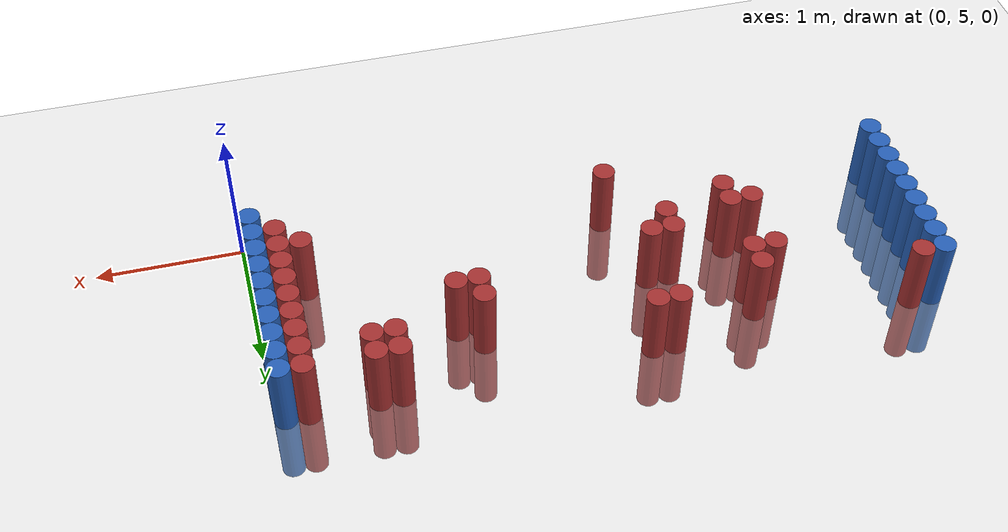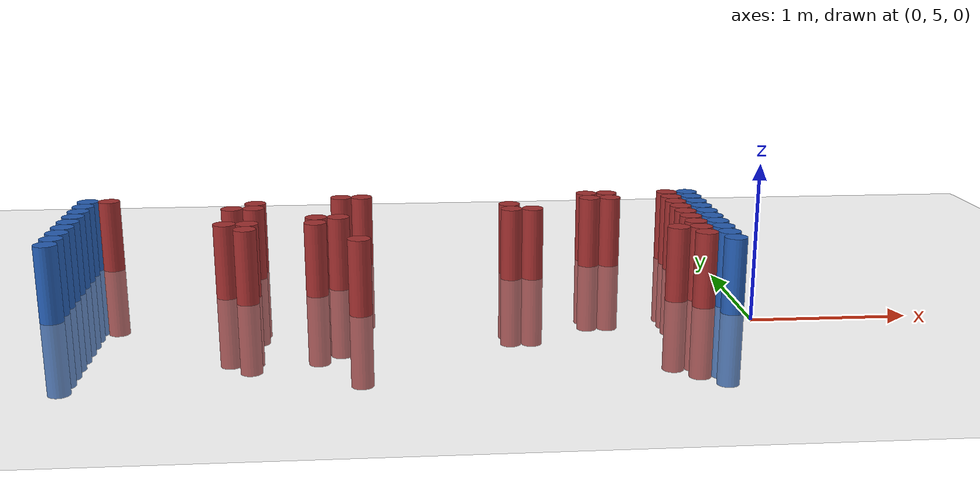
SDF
<sdf version="1.6">
 <world name="default">
  <model name="ground_plane">
   <static>1</static>
   <link name="link">
    <collision name="collision">
     <geometry><plane><normal>0 0 1</normal><size>100 100</size></plane></geometry>
     <surface><friction><ode><mu>100</mu><mu2>50</mu2></ode></friction></surface>
    </collision>
    <visual name="visual">
     <cast_shadows>0</cast_shadows>
     <geometry><plane><normal>0 0 1</normal><size>100 100</size></plane></geometry>
     <material>
      <script><uri>file://media/materials/scripts/gazebo.material</uri><name>Gazebo/Grey</name></script>
     </material>
    </visual>
   </link>
  </model>
  <model name="unit_cylinder_97">
   <static>1</static>
   <pose>-4.425000 5.325000 0.000000 0.000000 0.000000 0.000000</pose>
   <link name="link">
    <inertial>
     <mass>1</mass>
     <inertia><ixx>0.145833</ixx><ixy>0</ixy><ixz>0</ixz><iyy>0.145833</iyy><iyz>0</iyz><izz>0.125</izz></inertia>
    </inertial>
    <collision name="collision">
     <geometry><cylinder><radius>0.075000</radius><length>1</length></cylinder></geometry>
    </collision>
    <visual name="visual">
     <geometry><cylinder><radius>0.075000</radius><length>1</length></cylinder></geometry>
     <material>
      <ambient>0.152000 0.379000 0.720000 1</ambient>
      <diffuse>0.152000 0.379000 0.720000 1</diffuse>
     </material>
     <material>
      <script><name>Gazebo/Grey</name><uri>file://media/materials/scripts/gazebo.material</uri></script>
     </material>
    </visual>
   </link>
  </model>
  <model name="unit_cylinder_98">
   <static>1</static>
   <pose>-4.425000 5.475000 0.000000 0.000000 0.000000 0.000000</pose>
   <link name="link">
    <inertial>
     <mass>1</mass>
     <inertia><ixx>0.145833</ixx><ixy>0</ixy><ixz>0</ixz><iyy>0.145833</iyy><iyz>0</iyz><izz>0.125</izz></inertia>
    </inertial>
    <collision name="collision">
     <geometry><cylinder><radius>0.075000</radius><length>1</length></cylinder></geometry>
    </collision>
    <visual name="visual">
     <geometry><cylinder><radius>0.075000</radius><length>1</length></cylinder></geometry>
     <material>
      <ambient>0.152000 0.379000 0.720000 1</ambient>
      <diffuse>0.152000 0.379000 0.720000 1</diffuse>
     </material>
     <material>
      <script><name>Gazebo/Grey</name><uri>file://media/materials/scripts/gazebo.material</uri></script>
     </material>
    </visual>
   </link>
  </model>
  <model name="unit_cylinder_99">
   <static>1</static>
   <pose>-4.425000 5.625000 0.000000 0.000000 0.000000 0.000000</pose>
   <link name="link">
    <inertial>
     <mass>1</mass>
     <inertia><ixx>0.145833</ixx><ixy>0</ixy><ixz>0</ixz><iyy>0.145833</iyy><iyz>0</iyz><izz>0.125</izz></inertia>
    </inertial>
    <collision name="collision">
     <geometry><cylinder><radius>0.075000</radius><length>1</length></cylinder></geometry>
    </collision>
    <visual name="visual">
     <geometry><cylinder><radius>0.075000</radius><length>1</length></cylinder></geometry>
     <material>
      <ambient>0.152000 0.379000 0.720000 1</ambient>
      <diffuse>0.152000 0.379000 0.720000 1</diffuse>
     </material>
     <material>
      <script><name>Gazebo/Grey</name><uri>file://media/materials/scripts/gazebo.material</uri></script>
     </material>
    </visual>
   </link>
  </model>
  <model name="unit_cylinder_100">
   <static>1</static>
   <pose>-4.425000 5.775000 0.000000 0.000000 0.000000 0.000000</pose>
   <link name="link">
    <inertial>
     <mass>1</mass>
     <inertia><ixx>0.145833</ixx><ixy>0</ixy><ixz>0</ixz><iyy>0.145833</iyy><iyz>0</iyz><izz>0.125</izz></inertia>
    </inertial>
    <collision name="collision">
     <geometry><cylinder><radius>0.075000</radius><length>1</length></cylinder></geometry>
    </collision>
    <visual name="visual">
     <geometry><cylinder><radius>0.075000</radius><length>1</length></cylinder></geometry>
     <material>
      <ambient>0.152000 0.379000 0.720000 1</ambient>
      <diffuse>0.152000 0.379000 0.720000 1</diffuse>
     </material>
     <material>
      <script><name>Gazebo/Grey</name><uri>file://media/materials/scripts/gazebo.material</uri></script>
     </material>
    </visual>
   </link>
  </model>
  <model name="unit_cylinder_101">
   <static>1</static>
   <pose>-4.425000 5.925000 0.000000 0.000000 0.000000 0.000000</pose>
   <link name="link">
    <inertial>
     <mass>1</mass>
     <inertia><ixx>0.145833</ixx><ixy>0</ixy><ixz>0</ixz><iyy>0.145833</iyy><iyz>0</iyz><izz>0.125</izz></inertia>
    </inertial>
    <collision name="collision">
     <geometry><cylinder><radius>0.075000</radius><length>1</length></cylinder></geometry>
    </collision>
    <visual name="visual">
     <geometry><cylinder><radius>0.075000</radius><length>1</length></cylinder></geometry>
     <material>
      <ambient>0.152000 0.379000 0.720000 1</ambient>
      <diffuse>0.152000 0.379000 0.720000 1</diffuse>
     </material>
     <material>
      <script><name>Gazebo/Grey</name><uri>file://media/materials/scripts/gazebo.material</uri></script>
     </material>
    </visual>
   </link>
  </model>
  <model name="unit_cylinder_102">
   <static>1</static>
   <pose>-4.425000 6.075000 0.000000 0.000000 0.000000 0.000000</pose>
   <link name="link">
    <inertial>
     <mass>1</mass>
     <inertia><ixx>0.145833</ixx><ixy>0</ixy><ixz>0</ixz><iyy>0.145833</iyy><iyz>0</iyz><izz>0.125</izz></inertia>
    </inertial>
    <collision name="collision">
     <geometry><cylinder><radius>0.075000</radius><length>1</length></cylinder></geometry>
    </collision>
    <visual name="visual">
     <geometry><cylinder><radius>0.075000</radius><length>1</length></cylinder></geometry>
     <material>
      <ambient>0.152000 0.379000 0.720000 1</ambient>
      <diffuse>0.152000 0.379000 0.720000 1</diffuse>
     </material>
     <material>
      <script><name>Gazebo/Grey</name><uri>file://media/materials/scripts/gazebo.material</uri></script>
     </material>
    </visual>
   </link>
  </model>
  <model name="unit_cylinder_103">
   <static>1</static>
   <pose>-4.425000 6.225000 0.000000 0.000000 0.000000 0.000000</pose>
   <link name="link">
    <inertial>
     <mass>1</mass>
     <inertia><ixx>0.145833</ixx><ixy>0</ixy><ixz>0</ixz><iyy>0.145833</iyy><iyz>0</iyz><izz>0.125</izz></inertia>
    </inertial>
    <collision name="collision">
     <geometry><cylinder><radius>0.075000</radius><length>1</length></cylinder></geometry>
    </collision>
    <visual name="visual">
     <geometry><cylinder><radius>0.075000</radius><length>1</length></cylinder></geometry>
     <material>
      <ambient>0.152000 0.379000 0.720000 1</ambient>
      <diffuse>0.152000 0.379000 0.720000 1</diffuse>
     </material>
     <material>
      <script><name>Gazebo/Grey</name><uri>file://media/materials/scripts/gazebo.material</uri></script>
     </material>
    </visual>
   </link>
  </model>
  <model name="unit_cylinder_104">
   <static>1</static>
   <pose>-4.425000 6.375000 0.000000 0.000000 0.000000 0.000000</pose>
   <link name="link">
    <inertial>
     <mass>1</mass>
     <inertia><ixx>0.145833</ixx><ixy>0</ixy><ixz>0</ixz><iyy>0.145833</iyy><iyz>0</iyz><izz>0.125</izz></inertia>
    </inertial>
    <collision name="collision">
     <geometry><cylinder><radius>0.075000</radius><length>1</length></cylinder></geometry>
    </collision>
    <visual name="visual">
     <geometry><cylinder><radius>0.075000</radius><length>1</length></cylinder></geometry>
     <material>
      <ambient>0.152000 0.379000 0.720000 1</ambient>
      <diffuse>0.152000 0.379000 0.720000 1</diffuse>
     </material>
     <material>
      <script><name>Gazebo/Grey</name><uri>file://media/materials/scripts/gazebo.material</uri></script>
     </material>
    </visual>
   </link>
  </model>
  <model name="unit_cylinder_105">
   <static>1</static>
   <pose>-4.425000 6.525000 0.000000 0.000000 0.000000 0.000000</pose>
   <link name="link">
    <inertial>
     <mass>1</mass>
     <inertia><ixx>0.145833</ixx><ixy>0</ixy><ixz>0</ixz><iyy>0.145833</iyy><iyz>0</iyz><izz>0.125</izz></inertia>
    </inertial>
    <collision name="collision">
     <geometry><cylinder><radius>0.075000</radius><length>1</length></cylinder></geometry>
    </collision>
    <visual name="visual">
     <geometry><cylinder><radius>0.075000</radius><length>1</length></cylinder></geometry>
     <material>
      <ambient>0.152000 0.379000 0.720000 1</ambient>
      <diffuse>0.152000 0.379000 0.720000 1</diffuse>
     </material>
     <material>
      <script><name>Gazebo/Grey</name><uri>file://media/materials/scripts/gazebo.material</uri></script>
     </material>
    </visual>
   </link>
  </model>
  <model name="unit_cylinder_126">
   <static>1</static>
   <pose>-4.275000 6.525000 0.000000 0.000000 0.000000 0.000000</pose>
   <link name="link">
    <inertial>
     <mass>1</mass>
     <inertia><ixx>0.145833</ixx><ixy>0</ixy><ixz>0</ixz><iyy>0.145833</iyy><iyz>0</iyz><izz>0.125</izz></inertia>
    </inertial>
    <collision name="collision">
     <geometry><cylinder><radius>0.075000</radius><length>1</length></cylinder></geometry>
    </collision>
    <visual name="visual">
     <geometry><cylinder><radius>0.075000</radius><length>1</length></cylinder></geometry>
     <material>
      <ambient>0.648000 0.192000 0.192000 1</ambient>
      <diffuse>0.648000 0.192000 0.192000 1</diffuse>
     </material>
     <material>
      <script><name>Gazebo/Grey</name><uri>file://media/materials/scripts/gazebo.material</uri></script>
     </material>
    </visual>
   </link>
  </model>
  <model name="unit_cylinder_141">
   <static>1</static>
   <pose>-3.375000 5.775000 0.000000 0.000000 0.000000 0.000000</pose>
   <link name="link">
    <inertial>
     <mass>1</mass>
     <inertia><ixx>0.145833</ixx><ixy>0</ixy><ixz>0</ixz><iyy>0.145833</iyy><iyz>0</iyz><izz>0.125</izz></inertia>
    </inertial>
    <collision name="collision">
     <geometry><cylinder><radius>0.075000</radius><length>1</length></cylinder></geometry>
    </collision>
    <visual name="visual">
     <geometry><cylinder><radius>0.075000</radius><length>1</length></cylinder></geometry>
     <material>
      <ambient>0.648000 0.192000 0.192000 1</ambient>
      <diffuse>0.648000 0.192000 0.192000 1</diffuse>
     </material>
     <material>
      <script><name>Gazebo/Grey</name><uri>file://media/materials/scripts/gazebo.material</uri></script>
     </material>
    </visual>
   </link>
  </model>
  <model name="unit_cylinder_142">
   <static>1</static>
   <pose>-3.375000 6.225000 0.000000 0.000000 0.000000 0.000000</pose>
   <link name="link">
    <inertial>
     <mass>1</mass>
     <inertia><ixx>0.145833</ixx><ixy>0</ixy><ixz>0</ixz><iyy>0.145833</iyy><iyz>0</iyz><izz>0.125</izz></inertia>
    </inertial>
    <collision name="collision">
     <geometry><cylinder><radius>0.075000</radius><length>1</length></cylinder></geometry>
    </collision>
    <visual name="visual">
     <geometry><cylinder><radius>0.075000</radius><length>1</length></cylinder></geometry>
     <material>
      <ambient>0.648000 0.192000 0.192000 1</ambient>
      <diffuse>0.648000 0.192000 0.192000 1</diffuse>
     </material>
     <material>
      <script><name>Gazebo/Grey</name><uri>file://media/materials/scripts/gazebo.material</uri></script>
     </material>
    </visual>
   </link>
  </model>
  <model name="unit_cylinder_144">
   <static>1</static>
   <pose>-3.225000 5.625000 0.000000 0.000000 0.000000 0.000000</pose>
   <link name="link">
    <inertial>
     <mass>1</mass>
     <inertia><ixx>0.145833</ixx><ixy>0</ixy><ixz>0</ixz><iyy>0.145833</iyy><iyz>0</iyz><izz>0.125</izz></inertia>
    </inertial>
    <collision name="collision">
     <geometry><cylinder><radius>0.075000</radius><length>1</length></cylinder></geometry>
    </collision>
    <visual name="visual">
     <geometry><cylinder><radius>0.075000</radius><length>1</length></cylinder></geometry>
     <material>
      <ambient>0.648000 0.192000 0.192000 1</ambient>
      <diffuse>0.648000 0.192000 0.192000 1</diffuse>
     </material>
     <material>
      <script><name>Gazebo/Grey</name><uri>file://media/materials/scripts/gazebo.material</uri></script>
     </material>
    </visual>
   </link>
  </model>
  <model name="unit_cylinder_145">
   <static>1</static>
   <pose>-3.225000 5.775000 0.000000 0.000000 0.000000 0.000000</pose>
   <link name="link">
    <inertial>
     <mass>1</mass>
     <inertia><ixx>0.145833</ixx><ixy>0</ixy><ixz>0</ixz><iyy>0.145833</iyy><iyz>0</iyz><izz>0.125</izz></inertia>
    </inertial>
    <collision name="collision">
     <geometry><cylinder><radius>0.075000</radius><length>1</length></cylinder></geometry>
    </collision>
    <visual name="visual">
     <geometry><cylinder><radius>0.075000</radius><length>1</length></cylinder></geometry>
     <material>
      <ambient>0.648000 0.192000 0.192000 1</ambient>
      <diffuse>0.648000 0.192000 0.192000 1</diffuse>
     </material>
     <material>
      <script><name>Gazebo/Grey</name><uri>file://media/materials/scripts/gazebo.material</uri></script>
     </material>
    </visual>
   </link>
  </model>
  <model name="unit_cylinder_146">
   <static>1</static>
   <pose>-3.225000 6.225000 0.000000 0.000000 0.000000 0.000000</pose>
   <link name="link">
    <inertial>
     <mass>1</mass>
     <inertia><ixx>0.145833</ixx><ixy>0</ixy><ixz>0</ixz><iyy>0.145833</iyy><iyz>0</iyz><izz>0.125</izz></inertia>
    </inertial>
    <collision name="collision">
     <geometry><cylinder><radius>0.075000</radius><length>1</length></cylinder></geometry>
    </collision>
    <visual name="visual">
     <geometry><cylinder><radius>0.075000</radius><length>1</length></cylinder></geometry>
     <material>
      <ambient>0.648000 0.192000 0.192000 1</ambient>
      <diffuse>0.648000 0.192000 0.192000 1</diffuse>
     </material>
     <material>
      <script><name>Gazebo/Grey</name><uri>file://media/materials/scripts/gazebo.material</uri></script>
     </material>
    </visual>
   </link>
  </model>
  <model name="unit_cylinder_147">
   <static>1</static>
   <pose>-3.225000 6.375000 0.000000 0.000000 0.000000 0.000000</pose>
   <link name="link">
    <inertial>
     <mass>1</mass>
     <inertia><ixx>0.145833</ixx><ixy>0</ixy><ixz>0</ixz><iyy>0.145833</iyy><iyz>0</iyz><izz>0.125</izz></inertia>
    </inertial>
    <collision name="collision">
     <geometry><cylinder><radius>0.075000</radius><length>1</length></cylinder></geometry>
    </collision>
    <visual name="visual">
     <geometry><cylinder><radius>0.075000</radius><length>1</length></cylinder></geometry>
     <material>
      <ambient>0.648000 0.192000 0.192000 1</ambient>
      <diffuse>0.648000 0.192000 0.192000 1</diffuse>
     </material>
     <material>
      <script><name>Gazebo/Grey</name><uri>file://media/materials/scripts/gazebo.material</uri></script>
     </material>
    </visual>
   </link>
  </model>
  <model name="unit_cylinder_152">
   <static>1</static>
   <pose>-2.775000 5.775000 0.000000 0.000000 0.000000 0.000000</pose>
   <link name="link">
    <inertial>
     <mass>1</mass>
     <inertia><ixx>0.145833</ixx><ixy>0</ixy><ixz>0</ixz><iyy>0.145833</iyy><iyz>0</iyz><izz>0.125</izz></inertia>
    </inertial>
    <collision name="collision">
     <geometry><cylinder><radius>0.075000</radius><length>1</length></cylinder></geometry>
    </collision>
    <visual name="visual">
     <geometry><cylinder><radius>0.075000</radius><length>1</length></cylinder></geometry>
     <material>
      <ambient>0.648000 0.192000 0.192000 1</ambient>
      <diffuse>0.648000 0.192000 0.192000 1</diffuse>
     </material>
     <material>
      <script><name>Gazebo/Grey</name><uri>file://media/materials/scripts/gazebo.material</uri></script>
     </material>
    </visual>
   </link>
  </model>
  <model name="unit_cylinder_153">
   <static>1</static>
   <pose>-2.775000 5.925000 0.000000 0.000000 0.000000 0.000000</pose>
   <link name="link">
    <inertial>
     <mass>1</mass>
     <inertia><ixx>0.145833</ixx><ixy>0</ixy><ixz>0</ixz><iyy>0.145833</iyy><iyz>0</iyz><izz>0.125</izz></inertia>
    </inertial>
    <collision name="collision">
     <geometry><cylinder><radius>0.075000</radius><length>1</length></cylinder></geometry>
    </collision>
    <visual name="visual">
     <geometry><cylinder><radius>0.075000</radius><length>1</length></cylinder></geometry>
     <material>
      <ambient>0.648000 0.192000 0.192000 1</ambient>
      <diffuse>0.648000 0.192000 0.192000 1</diffuse>
     </material>
     <material>
      <script><name>Gazebo/Grey</name><uri>file://media/materials/scripts/gazebo.material</uri></script>
     </material>
    </visual>
   </link>
  </model>
  <model name="unit_cylinder_154">
   <static>1</static>
   <pose>-2.625000 5.925000 0.000000 0.000000 0.000000 0.000000</pose>
   <link name="link">
    <inertial>
     <mass>1</mass>
     <inertia><ixx>0.145833</ixx><ixy>0</ixy><ixz>0</ixz><iyy>0.145833</iyy><iyz>0</iyz><izz>0.125</izz></inertia>
    </inertial>
    <collision name="collision">
     <geometry><cylinder><radius>0.075000</radius><length>1</length></cylinder></geometry>
    </collision>
    <visual name="visual">
     <geometry><cylinder><radius>0.075000</radius><length>1</length></cylinder></geometry>
     <material>
      <ambient>0.648000 0.192000 0.192000 1</ambient>
      <diffuse>0.648000 0.192000 0.192000 1</diffuse>
     </material>
     <material>
      <script><name>Gazebo/Grey</name><uri>file://media/materials/scripts/gazebo.material</uri></script>
     </material>
    </visual>
   </link>
  </model>
  <model name="unit_cylinder_155">
   <static>1</static>
   <pose>-2.625000 6.525000 0.000000 0.000000 0.000000 0.000000</pose>
   <link name="link">
    <inertial>
     <mass>1</mass>
     <inertia><ixx>0.145833</ixx><ixy>0</ixy><ixz>0</ixz><iyy>0.145833</iyy><iyz>0</iyz><izz>0.125</izz></inertia>
    </inertial>
    <collision name="collision">
     <geometry><cylinder><radius>0.075000</radius><length>1</length></cylinder></geometry>
    </collision>
    <visual name="visual">
     <geometry><cylinder><radius>0.075000</radius><length>1</length></cylinder></geometry>
     <material>
      <ambient>0.648000 0.192000 0.192000 1</ambient>
      <diffuse>0.648000 0.192000 0.192000 1</diffuse>
     </material>
     <material>
      <script><name>Gazebo/Grey</name><uri>file://media/materials/scripts/gazebo.material</uri></script>
     </material>
    </visual>
   </link>
  </model>
  <model name="unit_cylinder_159">
   <static>1</static>
   <pose>-2.475000 5.325000 0.000000 0.000000 0.000000 0.000000</pose>
   <link name="link">
    <inertial>
     <mass>1</mass>
     <inertia><ixx>0.145833</ixx><ixy>0</ixy><ixz>0</ixz><iyy>0.145833</iyy><iyz>0</iyz><izz>0.125</izz></inertia>
    </inertial>
    <collision name="collision">
     <geometry><cylinder><radius>0.075000</radius><length>1</length></cylinder></geometry>
    </collision>
    <visual name="visual">
     <geometry><cylinder><radius>0.075000</radius><length>1</length></cylinder></geometry>
     <material>
      <ambient>0.648000 0.192000 0.192000 1</ambient>
      <diffuse>0.648000 0.192000 0.192000 1</diffuse>
     </material>
     <material>
      <script><name>Gazebo/Grey</name><uri>file://media/materials/scripts/gazebo.material</uri></script>
     </material>
    </visual>
   </link>
  </model>
  <model name="unit_cylinder_160">
   <static>1</static>
   <pose>-2.475000 6.525000 0.000000 0.000000 0.000000 0.000000</pose>
   <link name="link">
    <inertial>
     <mass>1</mass>
     <inertia><ixx>0.145833</ixx><ixy>0</ixy><ixz>0</ixz><iyy>0.145833</iyy><iyz>0</iyz><izz>0.125</izz></inertia>
    </inertial>
    <collision name="collision">
     <geometry><cylinder><radius>0.075000</radius><length>1</length></cylinder></geometry>
    </collision>
    <visual name="visual">
     <geometry><cylinder><radius>0.075000</radius><length>1</length></cylinder></geometry>
     <material>
      <ambient>0.648000 0.192000 0.192000 1</ambient>
      <diffuse>0.648000 0.192000 0.192000 1</diffuse>
     </material>
     <material>
      <script><name>Gazebo/Grey</name><uri>file://media/materials/scripts/gazebo.material</uri></script>
     </material>
    </visual>
   </link>
  </model>
  <model name="unit_cylinder_167">
   <static>1</static>
   <pose>-1.425000 6.075000 0.000000 0.000000 0.000000 0.000000</pose>
   <link name="link">
    <inertial>
     <mass>1</mass>
     <inertia><ixx>0.145833</ixx><ixy>0</ixy><ixz>0</ixz><iyy>0.145833</iyy><iyz>0</iyz><izz>0.125</izz></inertia>
    </inertial>
    <collision name="collision">
     <geometry><cylinder><radius>0.075000</radius><length>1</length></cylinder></geometry>
    </collision>
    <visual name="visual">
     <geometry><cylinder><radius>0.075000</radius><length>1</length></cylinder></geometry>
     <material>
      <ambient>0.648000 0.192000 0.192000 1</ambient>
      <diffuse>0.648000 0.192000 0.192000 1</diffuse>
     </material>
     <material>
      <script><name>Gazebo/Grey</name><uri>file://media/materials/scripts/gazebo.material</uri></script>
     </material>
    </visual>
   </link>
  </model>
  <model name="unit_cylinder_168">
   <static>1</static>
   <pose>-1.425000 6.225000 0.000000 0.000000 0.000000 0.000000</pose>
   <link name="link">
    <inertial>
     <mass>1</mass>
     <inertia><ixx>0.145833</ixx><ixy>0</ixy><ixz>0</ixz><iyy>0.145833</iyy><iyz>0</iyz><izz>0.125</izz></inertia>
    </inertial>
    <collision name="collision">
     <geometry><cylinder><radius>0.075000</radius><length>1</length></cylinder></geometry>
    </collision>
    <visual name="visual">
     <geometry><cylinder><radius>0.075000</radius><length>1</length></cylinder></geometry>
     <material>
      <ambient>0.648000 0.192000 0.192000 1</ambient>
      <diffuse>0.648000 0.192000 0.192000 1</diffuse>
     </material>
     <material>
      <script><name>Gazebo/Grey</name><uri>file://media/materials/scripts/gazebo.material</uri></script>
     </material>
    </visual>
   </link>
  </model>
  <model name="unit_cylinder_169">
   <static>1</static>
   <pose>-1.275000 6.075000 0.000000 0.000000 0.000000 0.000000</pose>
   <link name="link">
    <inertial>
     <mass>1</mass>
     <inertia><ixx>0.145833</ixx><ixy>0</ixy><ixz>0</ixz><iyy>0.145833</iyy><iyz>0</iyz><izz>0.125</izz></inertia>
    </inertial>
    <collision name="collision">
     <geometry><cylinder><radius>0.075000</radius><length>1</length></cylinder></geometry>
    </collision>
    <visual name="visual">
     <geometry><cylinder><radius>0.075000</radius><length>1</length></cylinder></geometry>
     <material>
      <ambient>0.648000 0.192000 0.192000 1</ambient>
      <diffuse>0.648000 0.192000 0.192000 1</diffuse>
     </material>
     <material>
      <script><name>Gazebo/Grey</name><uri>file://media/materials/scripts/gazebo.material</uri></script>
     </material>
    </visual>
   </link>
  </model>
  <model name="unit_cylinder_173">
   <static>1</static>
   <pose>-0.825000 6.375000 0.000000 0.000000 0.000000 0.000000</pose>
   <link name="link">
    <inertial>
     <mass>1</mass>
     <inertia><ixx>0.145833</ixx><ixy>0</ixy><ixz>0</ixz><iyy>0.145833</iyy><iyz>0</iyz><izz>0.125</izz></inertia>
    </inertial>
    <collision name="collision">
     <geometry><cylinder><radius>0.075000</radius><length>1</length></cylinder></geometry>
    </collision>
    <visual name="visual">
     <geometry><cylinder><radius>0.075000</radius><length>1</length></cylinder></geometry>
     <material>
      <ambient>0.648000 0.192000 0.192000 1</ambient>
      <diffuse>0.648000 0.192000 0.192000 1</diffuse>
     </material>
     <material>
      <script><name>Gazebo/Grey</name><uri>file://media/materials/scripts/gazebo.material</uri></script>
     </material>
    </visual>
   </link>
  </model>
  <model name="unit_cylinder_174">
   <static>1</static>
   <pose>-0.825000 6.525000 0.000000 0.000000 0.000000 0.000000</pose>
   <link name="link">
    <inertial>
     <mass>1</mass>
     <inertia><ixx>0.145833</ixx><ixy>0</ixy><ixz>0</ixz><iyy>0.145833</iyy><iyz>0</iyz><izz>0.125</izz></inertia>
    </inertial>
    <collision name="collision">
     <geometry><cylinder><radius>0.075000</radius><length>1</length></cylinder></geometry>
    </collision>
    <visual name="visual">
     <geometry><cylinder><radius>0.075000</radius><length>1</length></cylinder></geometry>
     <material>
      <ambient>0.648000 0.192000 0.192000 1</ambient>
      <diffuse>0.648000 0.192000 0.192000 1</diffuse>
     </material>
     <material>
      <script><name>Gazebo/Grey</name><uri>file://media/materials/scripts/gazebo.material</uri></script>
     </material>
    </visual>
   </link>
  </model>
  <model name="unit_cylinder_179">
   <static>1</static>
   <pose>-0.675000 6.375000 0.000000 0.000000 0.000000 0.000000</pose>
   <link name="link">
    <inertial>
     <mass>1</mass>
     <inertia><ixx>0.145833</ixx><ixy>0</ixy><ixz>0</ixz><iyy>0.145833</iyy><iyz>0</iyz><izz>0.125</izz></inertia>
    </inertial>
    <collision name="collision">
     <geometry><cylinder><radius>0.075000</radius><length>1</length></cylinder></geometry>
    </collision>
    <visual name="visual">
     <geometry><cylinder><radius>0.075000</radius><length>1</length></cylinder></geometry>
     <material>
      <ambient>0.648000 0.192000 0.192000 1</ambient>
      <diffuse>0.648000 0.192000 0.192000 1</diffuse>
     </material>
     <material>
      <script><name>Gazebo/Grey</name><uri>file://media/materials/scripts/gazebo.material</uri></script>
     </material>
    </visual>
   </link>
  </model>
  <model name="unit_cylinder_180">
   <static>1</static>
   <pose>-0.675000 6.525000 0.000000 0.000000 0.000000 0.000000</pose>
   <link name="link">
    <inertial>
     <mass>1</mass>
     <inertia><ixx>0.145833</ixx><ixy>0</ixy><ixz>0</ixz><iyy>0.145833</iyy><iyz>0</iyz><izz>0.125</izz></inertia>
    </inertial>
    <collision name="collision">
     <geometry><cylinder><radius>0.075000</radius><length>1</length></cylinder></geometry>
    </collision>
    <visual name="visual">
     <geometry><cylinder><radius>0.075000</radius><length>1</length></cylinder></geometry>
     <material>
      <ambient>0.648000 0.192000 0.192000 1</ambient>
      <diffuse>0.648000 0.192000 0.192000 1</diffuse>
     </material>
     <material>
      <script><name>Gazebo/Grey</name><uri>file://media/materials/scripts/gazebo.material</uri></script>
     </material>
    </visual>
   </link>
  </model>
  <model name="unit_cylinder_187">
   <static>1</static>
   <pose>-0.375000 5.475000 0.000000 0.000000 0.000000 0.000000</pose>
   <link name="link">
    <inertial>
     <mass>1</mass>
     <inertia><ixx>0.145833</ixx><ixy>0</ixy><ixz>0</ixz><iyy>0.145833</iyy><iyz>0</iyz><izz>0.125</izz></inertia>
    </inertial>
    <collision name="collision">
     <geometry><cylinder><radius>0.075000</radius><length>1</length></cylinder></geometry>
    </collision>
    <visual name="visual">
     <geometry><cylinder><radius>0.075000</radius><length>1</length></cylinder></geometry>
     <material>
      <ambient>0.648000 0.192000 0.192000 1</ambient>
      <diffuse>0.648000 0.192000 0.192000 1</diffuse>
     </material>
     <material>
      <script><name>Gazebo/Grey</name><uri>file://media/materials/scripts/gazebo.material</uri></script>
     </material>
    </visual>
   </link>
  </model>
  <model name="unit_cylinder_192">
   <static>1</static>
   <pose>-0.225000 5.325000 0.000000 0.000000 0.000000 0.000000</pose>
   <link name="link">
    <inertial>
     <mass>1</mass>
     <inertia><ixx>0.145833</ixx><ixy>0</ixy><ixz>0</ixz><iyy>0.145833</iyy><iyz>0</iyz><izz>0.125</izz></inertia>
    </inertial>
    <collision name="collision">
     <geometry><cylinder><radius>0.075000</radius><length>1</length></cylinder></geometry>
    </collision>
    <visual name="visual">
     <geometry><cylinder><radius>0.075000</radius><length>1</length></cylinder></geometry>
     <material>
      <ambient>0.648000 0.192000 0.192000 1</ambient>
      <diffuse>0.648000 0.192000 0.192000 1</diffuse>
     </material>
     <material>
      <script><name>Gazebo/Grey</name><uri>file://media/materials/scripts/gazebo.material</uri></script>
     </material>
    </visual>
   </link>
  </model>
  <model name="unit_cylinder_193">
   <static>1</static>
   <pose>-0.225000 5.475000 0.000000 0.000000 0.000000 0.000000</pose>
   <link name="link">
    <inertial>
     <mass>1</mass>
     <inertia><ixx>0.145833</ixx><ixy>0</ixy><ixz>0</ixz><iyy>0.145833</iyy><iyz>0</iyz><izz>0.125</izz></inertia>
    </inertial>
    <collision name="collision">
     <geometry><cylinder><radius>0.075000</radius><length>1</length></cylinder></geometry>
    </collision>
    <visual name="visual">
     <geometry><cylinder><radius>0.075000</radius><length>1</length></cylinder></geometry>
     <material>
      <ambient>0.648000 0.192000 0.192000 1</ambient>
      <diffuse>0.648000 0.192000 0.192000 1</diffuse>
     </material>
     <material>
      <script><name>Gazebo/Grey</name><uri>file://media/materials/scripts/gazebo.material</uri></script>
     </material>
    </visual>
   </link>
  </model>
  <model name="unit_cylinder_194">
   <static>1</static>
   <pose>-0.225000 5.625000 0.000000 0.000000 0.000000 0.000000</pose>
   <link name="link">
    <inertial>
     <mass>1</mass>
     <inertia><ixx>0.145833</ixx><ixy>0</ixy><ixz>0</ixz><iyy>0.145833</iyy><iyz>0</iyz><izz>0.125</izz></inertia>
    </inertial>
    <collision name="collision">
     <geometry><cylinder><radius>0.075000</radius><length>1</length></cylinder></geometry>
    </collision>
    <visual name="visual">
     <geometry><cylinder><radius>0.075000</radius><length>1</length></cylinder></geometry>
     <material>
      <ambient>0.648000 0.192000 0.192000 1</ambient>
      <diffuse>0.648000 0.192000 0.192000 1</diffuse>
     </material>
     <material>
      <script><name>Gazebo/Grey</name><uri>file://media/materials/scripts/gazebo.material</uri></script>
     </material>
    </visual>
   </link>
  </model>
  <model name="unit_cylinder_195">
   <static>1</static>
   <pose>-0.225000 5.775000 0.000000 0.000000 0.000000 0.000000</pose>
   <link name="link">
    <inertial>
     <mass>1</mass>
     <inertia><ixx>0.145833</ixx><ixy>0</ixy><ixz>0</ixz><iyy>0.145833</iyy><iyz>0</iyz><izz>0.125</izz></inertia>
    </inertial>
    <collision name="collision">
     <geometry><cylinder><radius>0.075000</radius><length>1</length></cylinder></geometry>
    </collision>
    <visual name="visual">
     <geometry><cylinder><radius>0.075000</radius><length>1</length></cylinder></geometry>
     <material>
      <ambient>0.648000 0.192000 0.192000 1</ambient>
      <diffuse>0.648000 0.192000 0.192000 1</diffuse>
     </material>
     <material>
      <script><name>Gazebo/Grey</name><uri>file://media/materials/scripts/gazebo.material</uri></script>
     </material>
    </visual>
   </link>
  </model>
  <model name="unit_cylinder_196">
   <static>1</static>
   <pose>-0.225000 5.925000 0.000000 0.000000 0.000000 0.000000</pose>
   <link name="link">
    <inertial>
     <mass>1</mass>
     <inertia><ixx>0.145833</ixx><ixy>0</ixy><ixz>0</ixz><iyy>0.145833</iyy><iyz>0</iyz><izz>0.125</izz></inertia>
    </inertial>
    <collision name="collision">
     <geometry><cylinder><radius>0.075000</radius><length>1</length></cylinder></geometry>
    </collision>
    <visual name="visual">
     <geometry><cylinder><radius>0.075000</radius><length>1</length></cylinder></geometry>
     <material>
      <ambient>0.648000 0.192000 0.192000 1</ambient>
      <diffuse>0.648000 0.192000 0.192000 1</diffuse>
     </material>
     <material>
      <script><name>Gazebo/Grey</name><uri>file://media/materials/scripts/gazebo.material</uri></script>
     </material>
    </visual>
   </link>
  </model>
  <model name="unit_cylinder_197">
   <static>1</static>
   <pose>-0.225000 6.075000 0.000000 0.000000 0.000000 0.000000</pose>
   <link name="link">
    <inertial>
     <mass>1</mass>
     <inertia><ixx>0.145833</ixx><ixy>0</ixy><ixz>0</ixz><iyy>0.145833</iyy><iyz>0</iyz><izz>0.125</izz></inertia>
    </inertial>
    <collision name="collision">
     <geometry><cylinder><radius>0.075000</radius><length>1</length></cylinder></geometry>
    </collision>
    <visual name="visual">
     <geometry><cylinder><radius>0.075000</radius><length>1</length></cylinder></geometry>
     <material>
      <ambient>0.648000 0.192000 0.192000 1</ambient>
      <diffuse>0.648000 0.192000 0.192000 1</diffuse>
     </material>
     <material>
      <script><name>Gazebo/Grey</name><uri>file://media/materials/scripts/gazebo.material</uri></script>
     </material>
    </visual>
   </link>
  </model>
  <model name="unit_cylinder_198">
   <static>1</static>
   <pose>-0.225000 6.225000 0.000000 0.000000 0.000000 0.000000</pose>
   <link name="link">
    <inertial>
     <mass>1</mass>
     <inertia><ixx>0.145833</ixx><ixy>0</ixy><ixz>0</ixz><iyy>0.145833</iyy><iyz>0</iyz><izz>0.125</izz></inertia>
    </inertial>
    <collision name="collision">
     <geometry><cylinder><radius>0.075000</radius><length>1</length></cylinder></geometry>
    </collision>
    <visual name="visual">
     <geometry><cylinder><radius>0.075000</radius><length>1</length></cylinder></geometry>
     <material>
      <ambient>0.648000 0.192000 0.192000 1</ambient>
      <diffuse>0.648000 0.192000 0.192000 1</diffuse>
     </material>
     <material>
      <script><name>Gazebo/Grey</name><uri>file://media/materials/scripts/gazebo.material</uri></script>
     </material>
    </visual>
   </link>
  </model>
  <model name="unit_cylinder_199">
   <static>1</static>
   <pose>-0.225000 6.375000 0.000000 0.000000 0.000000 0.000000</pose>
   <link name="link">
    <inertial>
     <mass>1</mass>
     <inertia><ixx>0.145833</ixx><ixy>0</ixy><ixz>0</ixz><iyy>0.145833</iyy><iyz>0</iyz><izz>0.125</izz></inertia>
    </inertial>
    <collision name="collision">
     <geometry><cylinder><radius>0.075000</radius><length>1</length></cylinder></geometry>
    </collision>
    <visual name="visual">
     <geometry><cylinder><radius>0.075000</radius><length>1</length></cylinder></geometry>
     <material>
      <ambient>0.648000 0.192000 0.192000 1</ambient>
      <diffuse>0.648000 0.192000 0.192000 1</diffuse>
     </material>
     <material>
      <script><name>Gazebo/Grey</name><uri>file://media/materials/scripts/gazebo.material</uri></script>
     </material>
    </visual>
   </link>
  </model>
  <model name="unit_cylinder_200">
   <static>1</static>
   <pose>-0.225000 6.525000 0.000000 0.000000 0.000000 0.000000</pose>
   <link name="link">
    <inertial>
     <mass>1</mass>
     <inertia><ixx>0.145833</ixx><ixy>0</ixy><ixz>0</ixz><iyy>0.145833</iyy><iyz>0</iyz><izz>0.125</izz></inertia>
    </inertial>
    <collision name="collision">
     <geometry><cylinder><radius>0.075000</radius><length>1</length></cylinder></geometry>
    </collision>
    <visual name="visual">
     <geometry><cylinder><radius>0.075000</radius><length>1</length></cylinder></geometry>
     <material>
      <ambient>0.648000 0.192000 0.192000 1</ambient>
      <diffuse>0.648000 0.192000 0.192000 1</diffuse>
     </material>
     <material>
      <script><name>Gazebo/Grey</name><uri>file://media/materials/scripts/gazebo.material</uri></script>
     </material>
    </visual>
   </link>
  </model>
  <model name="unit_cylinder_216">
   <static>1</static>
   <pose>-0.075000 5.175000 0.000000 0.000000 0.000000 0.000000</pose>
   <link name="link">
    <inertial>
     <mass>1</mass>
     <inertia><ixx>0.145833</ixx><ixy>0</ixy><ixz>0</ixz><iyy>0.145833</iyy><iyz>0</iyz><izz>0.125</izz></inertia>
    </inertial>
    <collision name="collision">
     <geometry><cylinder><radius>0.075000</radius><length>1</length></cylinder></geometry>
    </collision>
    <visual name="visual">
     <geometry><cylinder><radius>0.075000</radius><length>1</length></cylinder></geometry>
     <material>
      <ambient>0.152000 0.379000 0.720000 1</ambient>
      <diffuse>0.152000 0.379000 0.720000 1</diffuse>
     </material>
     <material>
      <script><name>Gazebo/Grey</name><uri>file://media/materials/scripts/gazebo.material</uri></script>
     </material>
    </visual>
   </link>
  </model>
  <model name="unit_cylinder_217">
   <static>1</static>
   <pose>-0.075000 5.325000 0.000000 0.000000 0.000000 0.000000</pose>
   <link name="link">
    <inertial>
     <mass>1</mass>
     <inertia><ixx>0.145833</ixx><ixy>0</ixy><ixz>0</ixz><iyy>0.145833</iyy><iyz>0</iyz><izz>0.125</izz></inertia>
    </inertial>
    <collision name="collision">
     <geometry><cylinder><radius>0.075000</radius><length>1</length></cylinder></geometry>
    </collision>
    <visual name="visual">
     <geometry><cylinder><radius>0.075000</radius><length>1</length></cylinder></geometry>
     <material>
      <ambient>0.152000 0.379000 0.720000 1</ambient>
      <diffuse>0.152000 0.379000 0.720000 1</diffuse>
     </material>
     <material>
      <script><name>Gazebo/Grey</name><uri>file://media/materials/scripts/gazebo.material</uri></script>
     </material>
    </visual>
   </link>
  </model>
  <model name="unit_cylinder_218">
   <static>1</static>
   <pose>-0.075000 5.475000 0.000000 0.000000 0.000000 0.000000</pose>
   <link name="link">
    <inertial>
     <mass>1</mass>
     <inertia><ixx>0.145833</ixx><ixy>0</ixy><ixz>0</ixz><iyy>0.145833</iyy><iyz>0</iyz><izz>0.125</izz></inertia>
    </inertial>
    <collision name="collision">
     <geometry><cylinder><radius>0.075000</radius><length>1</length></cylinder></geometry>
    </collision>
    <visual name="visual">
     <geometry><cylinder><radius>0.075000</radius><length>1</length></cylinder></geometry>
     <material>
      <ambient>0.152000 0.379000 0.720000 1</ambient>
      <diffuse>0.152000 0.379000 0.720000 1</diffuse>
     </material>
     <material>
      <script><name>Gazebo/Grey</name><uri>file://media/materials/scripts/gazebo.material</uri></script>
     </material>
    </visual>
   </link>
  </model>
  <model name="unit_cylinder_219">
   <static>1</static>
   <pose>-0.075000 5.625000 0.000000 0.000000 0.000000 0.000000</pose>
   <link name="link">
    <inertial>
     <mass>1</mass>
     <inertia><ixx>0.145833</ixx><ixy>0</ixy><ixz>0</ixz><iyy>0.145833</iyy><iyz>0</iyz><izz>0.125</izz></inertia>
    </inertial>
    <collision name="collision">
     <geometry><cylinder><radius>0.075000</radius><length>1</length></cylinder></geometry>
    </collision>
    <visual name="visual">
     <geometry><cylinder><radius>0.075000</radius><length>1</length></cylinder></geometry>
     <material>
      <ambient>0.152000 0.379000 0.720000 1</ambient>
      <diffuse>0.152000 0.379000 0.720000 1</diffuse>
     </material>
     <material>
      <script><name>Gazebo/Grey</name><uri>file://media/materials/scripts/gazebo.material</uri></script>
     </material>
    </visual>
   </link>
  </model>
  <model name="unit_cylinder_220">
   <static>1</static>
   <pose>-0.075000 5.775000 0.000000 0.000000 0.000000 0.000000</pose>
   <link name="link">
    <inertial>
     <mass>1</mass>
     <inertia><ixx>0.145833</ixx><ixy>0</ixy><ixz>0</ixz><iyy>0.145833</iyy><iyz>0</iyz><izz>0.125</izz></inertia>
    </inertial>
    <collision name="collision">
     <geometry><cylinder><radius>0.075000</radius><length>1</length></cylinder></geometry>
    </collision>
    <visual name="visual">
     <geometry><cylinder><radius>0.075000</radius><length>1</length></cylinder></geometry>
     <material>
      <ambient>0.152000 0.379000 0.720000 1</ambient>
      <diffuse>0.152000 0.379000 0.720000 1</diffuse>
     </material>
     <material>
      <script><name>Gazebo/Grey</name><uri>file://media/materials/scripts/gazebo.material</uri></script>
     </material>
    </visual>
   </link>
  </model>
  <model name="unit_cylinder_221">
   <static>1</static>
   <pose>-0.075000 5.925000 0.000000 0.000000 0.000000 0.000000</pose>
   <link name="link">
    <inertial>
     <mass>1</mass>
     <inertia><ixx>0.145833</ixx><ixy>0</ixy><ixz>0</ixz><iyy>0.145833</iyy><iyz>0</iyz><izz>0.125</izz></inertia>
    </inertial>
    <collision name="collision">
     <geometry><cylinder><radius>0.075000</radius><length>1</length></cylinder></geometry>
    </collision>
    <visual name="visual">
     <geometry><cylinder><radius>0.075000</radius><length>1</length></cylinder></geometry>
     <material>
      <ambient>0.152000 0.379000 0.720000 1</ambient>
      <diffuse>0.152000 0.379000 0.720000 1</diffuse>
     </material>
     <material>
      <script><name>Gazebo/Grey</name><uri>file://media/materials/scripts/gazebo.material</uri></script>
     </material>
    </visual>
   </link>
  </model>
  <model name="unit_cylinder_222">
   <static>1</static>
   <pose>-0.075000 6.075000 0.000000 0.000000 0.000000 0.000000</pose>
   <link name="link">
    <inertial>
     <mass>1</mass>
     <inertia><ixx>0.145833</ixx><ixy>0</ixy><ixz>0</ixz><iyy>0.145833</iyy><iyz>0</iyz><izz>0.125</izz></inertia>
    </inertial>
    <collision name="collision">
     <geometry><cylinder><radius>0.075000</radius><length>1</length></cylinder></geometry>
    </collision>
    <visual name="visual">
     <geometry><cylinder><radius>0.075000</radius><length>1</length></cylinder></geometry>
     <material>
      <ambient>0.152000 0.379000 0.720000 1</ambient>
      <diffuse>0.152000 0.379000 0.720000 1</diffuse>
     </material>
     <material>
      <script><name>Gazebo/Grey</name><uri>file://media/materials/scripts/gazebo.material</uri></script>
     </material>
    </visual>
   </link>
  </model>
  <model name="unit_cylinder_223">
   <static>1</static>
   <pose>-0.075000 6.225000 0.000000 0.000000 0.000000 0.000000</pose>
   <link name="link">
    <inertial>
     <mass>1</mass>
     <inertia><ixx>0.145833</ixx><ixy>0</ixy><ixz>0</ixz><iyy>0.145833</iyy><iyz>0</iyz><izz>0.125</izz></inertia>
    </inertial>
    <collision name="collision">
     <geometry><cylinder><radius>0.075000</radius><length>1</length></cylinder></geometry>
    </collision>
    <visual name="visual">
     <geometry><cylinder><radius>0.075000</radius><length>1</length></cylinder></geometry>
     <material>
      <ambient>0.152000 0.379000 0.720000 1</ambient>
      <diffuse>0.152000 0.379000 0.720000 1</diffuse>
     </material>
     <material>
      <script><name>Gazebo/Grey</name><uri>file://media/materials/scripts/gazebo.material</uri></script>
     </material>
    </visual>
   </link>
  </model>
  <model name="unit_cylinder_224">
   <static>1</static>
   <pose>-0.075000 6.375000 0.000000 0.000000 0.000000 0.000000</pose>
   <link name="link">
    <inertial>
     <mass>1</mass>
     <inertia><ixx>0.145833</ixx><ixy>0</ixy><ixz>0</ixz><iyy>0.145833</iyy><iyz>0</iyz><izz>0.125</izz></inertia>
    </inertial>
    <collision name="collision">
     <geometry><cylinder><radius>0.075000</radius><length>1</length></cylinder></geometry>
    </collision>
    <visual name="visual">
     <geometry><cylinder><radius>0.075000</radius><length>1</length></cylinder></geometry>
     <material>
      <ambient>0.152000 0.379000 0.720000 1</ambient>
      <diffuse>0.152000 0.379000 0.720000 1</diffuse>
     </material>
     <material>
      <script><name>Gazebo/Grey</name><uri>file://media/materials/scripts/gazebo.material</uri></script>
     </material>
    </visual>
   </link>
  </model>
  <model name="unit_cylinder_225">
   <static>1</static>
   <pose>-0.075000 6.525000 0.000000 0.000000 0.000000 0.000000</pose>
   <link name="link">
    <inertial>
     <mass>1</mass>
     <inertia><ixx>0.145833</ixx><ixy>0</ixy><ixz>0</ixz><iyy>0.145833</iyy><iyz>0</iyz><izz>0.125</izz></inertia>
    </inertial>
    <collision name="collision">
     <geometry><cylinder><radius>0.075000</radius><length>1</length></cylinder></geometry>
    </collision>
    <visual name="visual">
     <geometry><cylinder><radius>0.075000</radius><length>1</length></cylinder></geometry>
     <material>
      <ambient>0.152000 0.379000 0.720000 1</ambient>
      <diffuse>0.152000 0.379000 0.720000 1</diffuse>
     </material>
     <material>
      <script><name>Gazebo/Grey</name><uri>file://media/materials/scripts/gazebo.material</uri></script>
     </material>
    </visual>
   </link>
  </model>
 </world>
</sdf>
